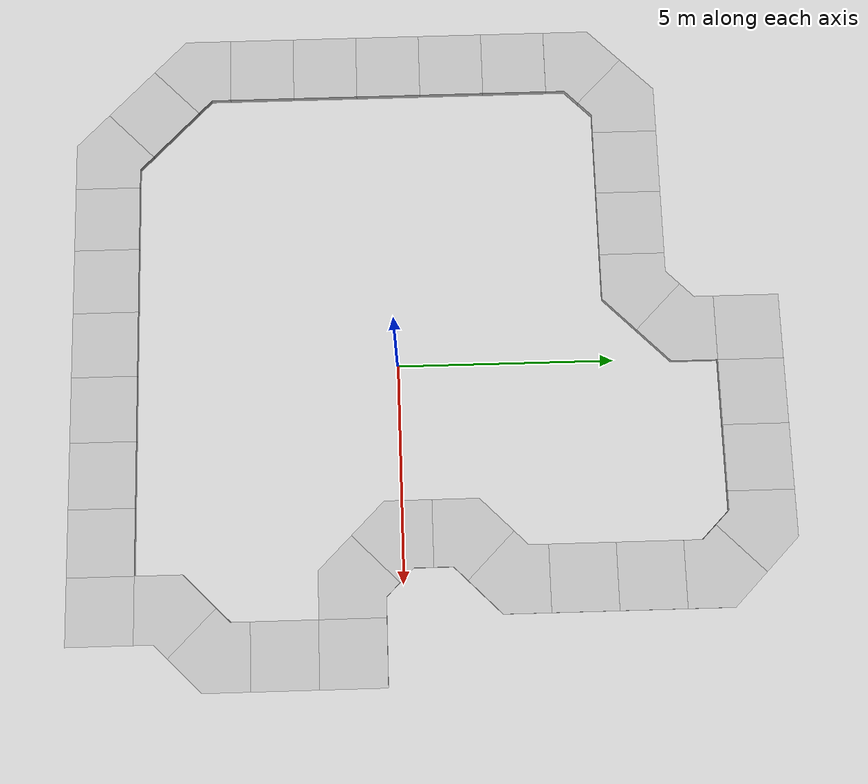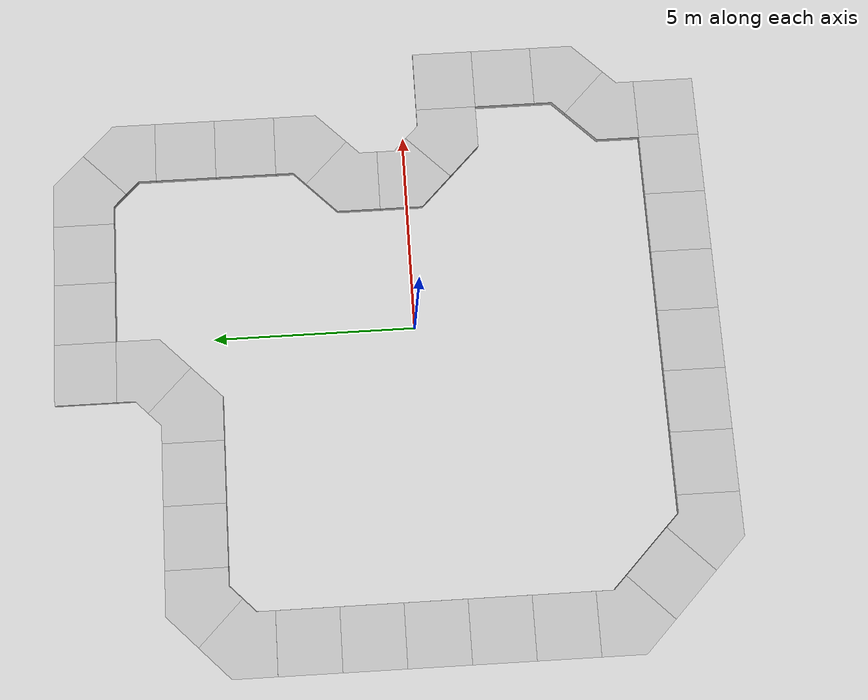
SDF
<sdf version="1.6">
 <world name="default">
  <light name="sun" type="directional">
   <pose>0 0 10 0 -0 0</pose>
   <diffuse>0.8 0.8 0.8 1</diffuse>
   <specular>0.2 0.2 0.2 1</specular>
   <attenuation>
    <range>1000</range>
    <constant>0.9</constant>
    <linear>0.01</linear>
    <quadratic>0.001</quadratic>
   </attenuation>
   <direction>-0.5 0.1 -0.9</direction>
  </light>
  <model name="ground_plane">
   <static>1</static>
   <link name="link">
    <collision name="collision">
     <geometry><plane><normal>0 0 1</normal><size>100 100</size></plane></geometry>
     <surface>
      <contact><collide_bitmask>65535</collide_bitmask></contact>
      <friction><ode><mu>100</mu><mu2>50</mu2></ode></friction>
     </surface>
    </collision>
    <visual name="visual">
     <cast_shadows>0</cast_shadows>
     <geometry><plane><normal>0 0 1</normal><size>100 100</size></plane></geometry>
     <material>
      <script><uri>file://media/materials/scripts/gazebo.material</uri><name>Gazebo/Grey</name></script>
     </material>
    </visual>
   </link>
  </model>
  <gravity>0 0 -9.8</gravity>
  <magnetic_field>6e-06 2.3e-05 -4.2e-05</magnetic_field>
  <atmosphere type="adiabatic"/>
  <physics name="default_physics" default="0" type="ode">
   <max_step_size>0.001</max_step_size>
   <real_time_factor>1</real_time_factor>
   <real_time_update_rate>1000</real_time_update_rate>
  </physics>
  <scene><ambient>0.4 0.4 0.4 1</ambient><background>0.7 0.7 0.7 1</background><shadows>1</shadows></scene>
  <spherical_coordinates>
   <surface_model>EARTH_WGS84</surface_model>
   <latitude_deg>0</latitude_deg>
   <longitude_deg>0</longitude_deg>
   <elevation>0</elevation>
   <heading_deg>0</heading_deg>
  </spherical_coordinates>
  <model name="walkway_metal_45">
   <static>1</static>
   <link name="link">
    <collision name="collision">
     <pose>0 0.538815 0.076075 0 -0 0</pose>
     <geometry><box><size>1.524 1.07763 0.15215</size></box></geometry>
    </collision>
    <collision name="collision2">
     <pose>0.15793 0.92 0.076075 0 0 -0.785398</pose>
     <geometry><box><size>1.524 1.07763 0.15215</size></box></geometry>
    </collision>
    <visual name="visual">
     <geometry>
      <mesh><scale>0.001 0.001 0.001</scale><uri>model://walkway_metal_45/meshes/mesh.obj</uri></mesh>
     </geometry>
    </visual>
   </link>
   <pose>-7.41453 3.73485 -0.000254 0 -0 0</pose>
  </model>
  <model name="walkway_metal_45_0">
   <static>1</static>
   <link name="link">
    <collision name="collision">
     <pose>0 0.538815 0.076075 0 -0 0</pose>
     <geometry><box><size>1.524 1.07763 0.15215</size></box></geometry>
    </collision>
    <collision name="collision2">
     <pose>0.15793 0.92 0.076075 0 0 -0.785398</pose>
     <geometry><box><size>1.524 1.07763 0.15215</size></box></geometry>
    </collision>
    <visual name="visual">
     <geometry>
      <mesh><scale>0.001 0.001 0.001</scale><uri>model://walkway_metal_45/meshes/mesh.obj</uri></mesh>
     </geometry>
    </visual>
   </link>
   <pose>-6.87552 5.03558 -0.000254 0 0 -0.785398</pose>
  </model>
  <model name="walkway_metal_straight">
   <static>1</static>
   <link name="link">
    <collision name="collision">
     <pose>0 0.762 0.076075 0 -0 0</pose>
     <geometry><box><size>1.524 1.524 0.15215</size></box></geometry>
    </collision>
    <visual name="visual">
     <geometry>
      <mesh><scale>0.001 0.001 0.001</scale><uri>model://walkway_metal_straight/meshes/mesh.obj</uri></mesh>
     </geometry>
    </visual>
   </link>
   <pose>-5.57462 5.5742 -0.000508 0 0 -1.5708</pose>
  </model>
  <model name="walkway_metal_straight_0">
   <static>1</static>
   <link name="link">
    <collision name="collision">
     <pose>0 0.762 0.076075 0 -0 0</pose>
     <geometry><box><size>1.524 1.524 0.15215</size></box></geometry>
    </collision>
    <visual name="visual">
     <geometry>
      <mesh><scale>0.001 0.001 0.001</scale><uri>model://walkway_metal_straight/meshes/mesh.obj</uri></mesh>
     </geometry>
    </visual>
   </link>
   <pose>-2.52662 5.5742 -0.000508 0 -0 1.5708</pose>
  </model>
  <model name="walkway_metal_45_1">
   <static>1</static>
   <link name="link">
    <collision name="collision">
     <pose>0 0.538815 0.076075 0 -0 0</pose>
     <geometry><box><size>1.524 1.07763 0.15215</size></box></geometry>
    </collision>
    <collision name="collision2">
     <pose>0.15793 0.92 0.076075 0 0 -0.785398</pose>
     <geometry><box><size>1.524 1.07763 0.15215</size></box></geometry>
    </collision>
    <visual name="visual">
     <geometry>
      <mesh><scale>0.001 0.001 0.001</scale><uri>model://walkway_metal_45/meshes/mesh.obj</uri></mesh>
     </geometry>
    </visual>
   </link>
   <pose>-1.22572 6.11282 -0.000254 0 -0 2.3562</pose>
  </model>
  <model name="walkway_metal_45_2">
   <static>1</static>
   <link name="link">
    <collision name="collision">
     <pose>0 0.538815 0.076075 0 -0 0</pose>
     <geometry><box><size>1.524 1.07763 0.15215</size></box></geometry>
    </collision>
    <collision name="collision2">
     <pose>0.15793 0.92 0.076075 0 0 -0.785398</pose>
     <geometry><box><size>1.524 1.07763 0.15215</size></box></geometry>
    </collision>
    <visual name="visual">
     <geometry>
      <mesh><scale>0.001 0.001 0.001</scale><uri>model://walkway_metal_45/meshes/mesh.obj</uri></mesh>
     </geometry>
    </visual>
   </link>
   <pose>-0.68671 7.41356 -0.000254 0 0 -3.14159</pose>
  </model>
  <model name="walkway_metal_90">
   <static>1</static>
   <link name="link">
    <collision name="collision">
     <pose>0 0.762 0.076075 0 -0 0</pose>
     <geometry><box><size>1.524 1.524 0.15215</size></box></geometry>
    </collision>
    <visual name="visual">
     <geometry>
      <mesh><scale>0.001 0.001 0.001</scale><uri>model://walkway_metal_90/meshes/mesh.obj</uri></mesh>
     </geometry>
    </visual>
   </link>
   <pose>-0.68671 7.41356 -0.000508 0 -0 0</pose>
  </model>
  <model name="walkway_metal_straight_1">
   <static>1</static>
   <link name="link">
    <collision name="collision">
     <pose>0 0.762 0.076075 0 -0 0</pose>
     <geometry><box><size>1.524 1.524 0.15215</size></box></geometry>
    </collision>
    <visual name="visual">
     <geometry>
      <mesh><scale>0.001 0.001 0.001</scale><uri>model://walkway_metal_straight/meshes/mesh.obj</uri></mesh>
     </geometry>
    </visual>
   </link>
   <pose>0.07529 8.17555 -0.000508 0 0 -1.5708</pose>
  </model>
  <model name="walkway_metal_straight_2">
   <static>1</static>
   <link name="link">
    <collision name="collision">
     <pose>0 0.762 0.076075 0 -0 0</pose>
     <geometry><box><size>1.524 1.524 0.15215</size></box></geometry>
    </collision>
    <visual name="visual">
     <geometry>
      <mesh><scale>0.001 0.001 0.001</scale><uri>model://walkway_metal_straight/meshes/mesh.obj</uri></mesh>
     </geometry>
    </visual>
   </link>
   <pose>1.59929 8.17555 -0.000508 0 0 -1.5708</pose>
  </model>
  <model name="walkway_metal_45_3">
   <static>1</static>
   <link name="link">
    <collision name="collision">
     <pose>0 0.538815 0.076075 0 -0 0</pose>
     <geometry><box><size>1.524 1.07763 0.15215</size></box></geometry>
    </collision>
    <collision name="collision2">
     <pose>0.15793 0.92 0.076075 0 0 -0.785398</pose>
     <geometry><box><size>1.524 1.07763 0.15215</size></box></geometry>
    </collision>
    <visual name="visual">
     <geometry>
      <mesh><scale>0.001 0.001 0.001</scale><uri>model://walkway_metal_45/meshes/mesh.obj</uri></mesh>
     </geometry>
    </visual>
   </link>
   <pose>3.12329 8.17555 -0.000254 0 0 -1.5708</pose>
  </model>
  <model name="walkway_metal_45_4">
   <static>1</static>
   <link name="link">
    <collision name="collision">
     <pose>0 0.538815 0.076075 0 -0 0</pose>
     <geometry><box><size>1.524 1.07763 0.15215</size></box></geometry>
    </collision>
    <collision name="collision2">
     <pose>0.15793 0.92 0.076075 0 0 -0.785398</pose>
     <geometry><box><size>1.524 1.07763 0.15215</size></box></geometry>
    </collision>
    <visual name="visual">
     <geometry>
      <mesh><scale>0.001 0.001 0.001</scale><uri>model://walkway_metal_45/meshes/mesh.obj</uri></mesh>
     </geometry>
    </visual>
   </link>
   <pose>4.42402 7.63654 -0.000254 0 0 -2.35619</pose>
  </model>
  <model name="walkway_metal_straight_3">
   <static>1</static>
   <link name="link">
    <collision name="collision">
     <pose>0 0.762 0.076075 0 -0 0</pose>
     <geometry><box><size>1.524 1.524 0.15215</size></box></geometry>
    </collision>
    <visual name="visual">
     <geometry>
      <mesh><scale>0.001 0.001 0.001</scale><uri>model://walkway_metal_straight/meshes/mesh.obj</uri></mesh>
     </geometry>
    </visual>
   </link>
   <pose>4.96264 6.33565 -0.000508 0 0 -3.14159</pose>
  </model>
  <model name="walkway_metal_straight_4">
   <static>1</static>
   <link name="link">
    <collision name="collision">
     <pose>0 0.762 0.076075 0 -0 0</pose>
     <geometry><box><size>1.524 1.524 0.15215</size></box></geometry>
    </collision>
    <visual name="visual">
     <geometry>
      <mesh><scale>0.001 0.001 0.001</scale><uri>model://walkway_metal_straight/meshes/mesh.obj</uri></mesh>
     </geometry>
    </visual>
   </link>
   <pose>4.96264 4.81165 -0.000508 0 0 -3.14159</pose>
  </model>
  <model name="walkway_metal_45_5">
   <static>1</static>
   <link name="link">
    <collision name="collision">
     <pose>0 0.538815 0.076075 0 -0 0</pose>
     <geometry><box><size>1.524 1.07763 0.15215</size></box></geometry>
    </collision>
    <collision name="collision2">
     <pose>0.15793 0.92 0.076075 0 0 -0.785398</pose>
     <geometry><box><size>1.524 1.07763 0.15215</size></box></geometry>
    </collision>
    <visual name="visual">
     <geometry>
      <mesh><scale>0.001 0.001 0.001</scale><uri>model://walkway_metal_45/meshes/mesh.obj</uri></mesh>
     </geometry>
    </visual>
   </link>
   <pose>4.96264 3.28764 -0.000254 0 0 -3.14159</pose>
  </model>
  <model name="walkway_metal_45_6">
   <static>1</static>
   <link name="link">
    <collision name="collision">
     <pose>0 0.538815 0.076075 0 -0 0</pose>
     <geometry><box><size>1.524 1.07763 0.15215</size></box></geometry>
    </collision>
    <collision name="collision2">
     <pose>0.15793 0.92 0.076075 0 0 -0.785398</pose>
     <geometry><box><size>1.524 1.07763 0.15215</size></box></geometry>
    </collision>
    <visual name="visual">
     <geometry>
      <mesh><scale>0.001 0.001 0.001</scale><uri>model://walkway_metal_45/meshes/mesh.obj</uri></mesh>
     </geometry>
    </visual>
   </link>
   <pose>3.88462 0.686176 -0.000254 0 -0 0</pose>
  </model>
  <model name="walkway_metal_45_7">
   <static>1</static>
   <link name="link">
    <collision name="collision">
     <pose>0 0.538815 0.076075 0 -0 0</pose>
     <geometry><box><size>1.524 1.07763 0.15215</size></box></geometry>
    </collision>
    <collision name="collision2">
     <pose>0.15793 0.92 0.076075 0 0 -0.785398</pose>
     <geometry><box><size>1.524 1.07763 0.15215</size></box></geometry>
    </collision>
    <visual name="visual">
     <geometry>
      <mesh><scale>0.001 0.001 0.001</scale><uri>model://walkway_metal_45/meshes/mesh.obj</uri></mesh>
     </geometry>
    </visual>
   </link>
   <pose>4.42323 -0.614722 -0.000254 0 -0 0.785398</pose>
  </model>
  <model name="walkway_metal_45_8">
   <static>1</static>
   <link name="link">
    <collision name="collision">
     <pose>0 0.538815 0.076075 0 -0 0</pose>
     <geometry><box><size>1.524 1.07763 0.15215</size></box></geometry>
    </collision>
    <collision name="collision2">
     <pose>0.15793 0.92 0.076075 0 0 -0.785398</pose>
     <geometry><box><size>1.524 1.07763 0.15215</size></box></geometry>
    </collision>
    <visual name="visual">
     <geometry>
      <mesh><scale>0.001 0.001 0.001</scale><uri>model://walkway_metal_45/meshes/mesh.obj</uri></mesh>
     </geometry>
    </visual>
   </link>
   <pose>5.72397 -1.15373 -0.000254 0 -0 1.5708</pose>
  </model>
  <model name="walkway_metal_90_0">
   <static>1</static>
   <link name="link">
    <collision name="collision">
     <pose>0 0.762 0.076075 0 -0 0</pose>
     <geometry><box><size>1.524 1.524 0.15215</size></box></geometry>
    </collision>
    <visual name="visual">
     <geometry>
      <mesh><scale>0.001 0.001 0.001</scale><uri>model://walkway_metal_90/meshes/mesh.obj</uri></mesh>
     </geometry>
    </visual>
   </link>
   <pose>5.72397 -1.15373 -0.000508 0 0 -1.5708</pose>
  </model>
  <model name="walkway_metal_straight_5">
   <static>1</static>
   <link name="link">
    <collision name="collision">
     <pose>0 0.762 0.076075 0 -0 0</pose>
     <geometry><box><size>1.524 1.524 0.15215</size></box></geometry>
    </collision>
    <visual name="visual">
     <geometry>
      <mesh><scale>0.001 0.001 0.001</scale><uri>model://walkway_metal_straight/meshes/mesh.obj</uri></mesh>
     </geometry>
    </visual>
   </link>
   <pose>6.48597 -1.91573 -0.000508 0 -0 3.14159</pose>
  </model>
  <model name="walkway_metal_45_9">
   <static>1</static>
   <link name="link">
    <collision name="collision">
     <pose>0 0.538815 0.076075 0 -0 0</pose>
     <geometry><box><size>1.524 1.07763 0.15215</size></box></geometry>
    </collision>
    <collision name="collision2">
     <pose>0.15793 0.92 0.076075 0 0 -0.785398</pose>
     <geometry><box><size>1.524 1.07763 0.15215</size></box></geometry>
    </collision>
    <visual name="visual">
     <geometry>
      <mesh><scale>0.001 0.001 0.001</scale><uri>model://walkway_metal_45/meshes/mesh.obj</uri></mesh>
     </geometry>
    </visual>
   </link>
   <pose>6.48597 -3.43974 -0.000254 0 -0 3.14159</pose>
  </model>
  <model name="walkway_metal_45_10">
   <static>1</static>
   <link name="link">
    <collision name="collision">
     <pose>0 0.538815 0.076075 0 -0 0</pose>
     <geometry><box><size>1.524 1.07763 0.15215</size></box></geometry>
    </collision>
    <collision name="collision2">
     <pose>0.15793 0.92 0.076075 0 0 -0.785398</pose>
     <geometry><box><size>1.524 1.07763 0.15215</size></box></geometry>
    </collision>
    <visual name="visual">
     <geometry>
      <mesh><scale>0.001 0.001 0.001</scale><uri>model://walkway_metal_45/meshes/mesh.obj</uri></mesh>
     </geometry>
    </visual>
   </link>
   <pose>5.40794 -6.0412 -0.000254 0 0 -1e-06</pose>
  </model>
  <model name="walkway_metal_90_1">
   <static>1</static>
   <link name="link">
    <collision name="collision">
     <pose>0 0.762 0.076075 0 -0 0</pose>
     <geometry><box><size>1.524 1.524 0.15215</size></box></geometry>
    </collision>
    <visual name="visual">
     <geometry>
      <mesh><scale>0.001 0.001 0.001</scale><uri>model://walkway_metal_90/meshes/mesh.obj</uri></mesh>
     </geometry>
    </visual>
   </link>
   <pose>5.40794 -6.0412 -0.000508 0 0 -3.14159</pose>
  </model>
  <model name="walkway_metal_straight_6">
   <static>1</static>
   <link name="link">
    <collision name="collision">
     <pose>0 0.762 0.076075 0 -0 0</pose>
     <geometry><box><size>1.524 1.524 0.15215</size></box></geometry>
    </collision>
    <visual name="visual">
     <geometry>
      <mesh><scale>0.001 0.001 0.001</scale><uri>model://walkway_metal_straight/meshes/mesh.obj</uri></mesh>
     </geometry>
    </visual>
   </link>
   <pose>3.12194 -6.80321 -0.000508 0 0 -1.5708</pose>
  </model>
  <model name="walkway_metal_straight_7">
   <static>1</static>
   <link name="link">
    <collision name="collision">
     <pose>0 0.762 0.076075 0 -0 0</pose>
     <geometry><box><size>1.524 1.524 0.15215</size></box></geometry>
    </collision>
    <visual name="visual">
     <geometry>
      <mesh><scale>0.001 0.001 0.001</scale><uri>model://walkway_metal_straight/meshes/mesh.obj</uri></mesh>
     </geometry>
    </visual>
   </link>
   <pose>3.12194 -6.80321 -0.000508 0 -0 1.5708</pose>
  </model>
  <model name="walkway_metal_straight_8">
   <static>1</static>
   <link name="link">
    <collision name="collision">
     <pose>0 0.762 0.076075 0 -0 0</pose>
     <geometry><box><size>1.524 1.524 0.15215</size></box></geometry>
    </collision>
    <visual name="visual">
     <geometry>
      <mesh><scale>0.001 0.001 0.001</scale><uri>model://walkway_metal_straight/meshes/mesh.obj</uri></mesh>
     </geometry>
    </visual>
   </link>
   <pose>1.59794 -6.80321 -0.000508 0 -0 1.5708</pose>
  </model>
  <model name="walkway_metal_straight_9">
   <static>1</static>
   <link name="link">
    <collision name="collision">
     <pose>0 0.762 0.076075 0 -0 0</pose>
     <geometry><box><size>1.524 1.524 0.15215</size></box></geometry>
    </collision>
    <visual name="visual">
     <geometry>
      <mesh><scale>0.001 0.001 0.001</scale><uri>model://walkway_metal_straight/meshes/mesh.obj</uri></mesh>
     </geometry>
    </visual>
   </link>
   <pose>0.073939 -6.80321 -0.000508 0 -0 1.5708</pose>
  </model>
  <model name="walkway_metal_straight_10">
   <static>1</static>
   <link name="link">
    <collision name="collision">
     <pose>0 0.762 0.076075 0 -0 0</pose>
     <geometry><box><size>1.524 1.524 0.15215</size></box></geometry>
    </collision>
    <visual name="visual">
     <geometry>
      <mesh><scale>0.001 0.001 0.001</scale><uri>model://walkway_metal_straight/meshes/mesh.obj</uri></mesh>
     </geometry>
    </visual>
   </link>
   <pose>-1.45006 -6.80321 -0.000508 0 -0 1.5708</pose>
  </model>
  <model name="walkway_metal_straight_11">
   <static>1</static>
   <link name="link">
    <collision name="collision">
     <pose>0 0.762 0.076075 0 -0 0</pose>
     <geometry><box><size>1.524 1.524 0.15215</size></box></geometry>
    </collision>
    <visual name="visual">
     <geometry>
      <mesh><scale>0.001 0.001 0.001</scale><uri>model://walkway_metal_straight/meshes/mesh.obj</uri></mesh>
     </geometry>
    </visual>
   </link>
   <pose>-2.97406 -6.80321 -0.000508 0 -0 1.5708</pose>
  </model>
  <model name="walkway_metal_45_11">
   <static>1</static>
   <link name="link">
    <collision name="collision">
     <pose>0 0.538815 0.076075 0 -0 0</pose>
     <geometry><box><size>1.524 1.07763 0.15215</size></box></geometry>
    </collision>
    <collision name="collision2">
     <pose>0.15793 0.92 0.076075 0 0 -0.785398</pose>
     <geometry><box><size>1.524 1.07763 0.15215</size></box></geometry>
    </collision>
    <visual name="visual">
     <geometry>
      <mesh><scale>0.001 0.001 0.001</scale><uri>model://walkway_metal_45/meshes/mesh.obj</uri></mesh>
     </geometry>
    </visual>
   </link>
   <pose>-4.49806 -6.80321 -0.000254 0 -0 1.5708</pose>
  </model>
  <model name="walkway_metal_45_12">
   <static>1</static>
   <link name="link">
    <collision name="collision">
     <pose>0 0.538815 0.076075 0 -0 0</pose>
     <geometry><box><size>1.524 1.07763 0.15215</size></box></geometry>
    </collision>
    <collision name="collision2">
     <pose>0.15793 0.92 0.076075 0 0 -0.785398</pose>
     <geometry><box><size>1.524 1.07763 0.15215</size></box></geometry>
    </collision>
    <visual name="visual">
     <geometry>
      <mesh><scale>0.001 0.001 0.001</scale><uri>model://walkway_metal_45/meshes/mesh.obj</uri></mesh>
     </geometry>
    </visual>
   </link>
   <pose>-6.87643 -5.18658 -0.000254 0 -0 0.785402</pose>
  </model>
  <model name="walkway_metal_straight_12">
   <static>1</static>
   <link name="link">
    <collision name="collision">
     <pose>0 0.762 0.076075 0 -0 0</pose>
     <geometry><box><size>1.524 1.524 0.15215</size></box></geometry>
    </collision>
    <visual name="visual">
     <geometry>
      <mesh><scale>0.001 0.001 0.001</scale><uri>model://walkway_metal_straight/meshes/mesh.obj</uri></mesh>
     </geometry>
    </visual>
   </link>
   <pose>-5.7988 -6.2642 -0.000508 0 -0 0.785402</pose>
  </model>
  <model name="walkway_metal_straight_13">
   <static>1</static>
   <link name="link">
    <collision name="collision">
     <pose>0 0.762 0.076075 0 -0 0</pose>
     <geometry><box><size>1.524 1.524 0.15215</size></box></geometry>
    </collision>
    <visual name="visual">
     <geometry>
      <mesh><scale>0.001 0.001 0.001</scale><uri>model://walkway_metal_straight/meshes/mesh.obj</uri></mesh>
     </geometry>
    </visual>
   </link>
   <pose>-7.41505 -3.88568 -0.000508 0 -0 4e-06</pose>
  </model>
  <model name="walkway_metal_straight_14">
   <static>1</static>
   <link name="link">
    <collision name="collision">
     <pose>0 0.762 0.076075 0 -0 0</pose>
     <geometry><box><size>1.524 1.524 0.15215</size></box></geometry>
    </collision>
    <visual name="visual">
     <geometry>
      <mesh><scale>0.001 0.001 0.001</scale><uri>model://walkway_metal_straight/meshes/mesh.obj</uri></mesh>
     </geometry>
    </visual>
   </link>
   <pose>-7.41506 -2.36168 -0.000508 0 -0 4e-06</pose>
  </model>
  <model name="walkway_metal_straight_15">
   <static>1</static>
   <link name="link">
    <collision name="collision">
     <pose>0 0.762 0.076075 0 -0 0</pose>
     <geometry><box><size>1.524 1.524 0.15215</size></box></geometry>
    </collision>
    <visual name="visual">
     <geometry>
      <mesh><scale>0.001 0.001 0.001</scale><uri>model://walkway_metal_straight/meshes/mesh.obj</uri></mesh>
     </geometry>
    </visual>
   </link>
   <pose>-7.41507 -0.837679 -0.000508 0 -0 4e-06</pose>
  </model>
  <model name="walkway_metal_straight_16">
   <static>1</static>
   <link name="link">
    <collision name="collision">
     <pose>0 0.762 0.076075 0 -0 0</pose>
     <geometry><box><size>1.524 1.524 0.15215</size></box></geometry>
    </collision>
    <visual name="visual">
     <geometry>
      <mesh><scale>0.001 0.001 0.001</scale><uri>model://walkway_metal_straight/meshes/mesh.obj</uri></mesh>
     </geometry>
    </visual>
   </link>
   <pose>-7.41507 0.686321 -0.000508 0 -0 4e-06</pose>
  </model>
  <model name="walkway_metal_straight_17">
   <static>1</static>
   <link name="link">
    <collision name="collision">
     <pose>0 0.762 0.076075 0 -0 0</pose>
     <geometry><box><size>1.524 1.524 0.15215</size></box></geometry>
    </collision>
    <visual name="visual">
     <geometry>
      <mesh><scale>0.001 0.001 0.001</scale><uri>model://walkway_metal_straight/meshes/mesh.obj</uri></mesh>
     </geometry>
    </visual>
   </link>
   <pose>-7.41508 2.21032 -0.000508 0 -0 4e-06</pose>
  </model>
 </world>
</sdf>
